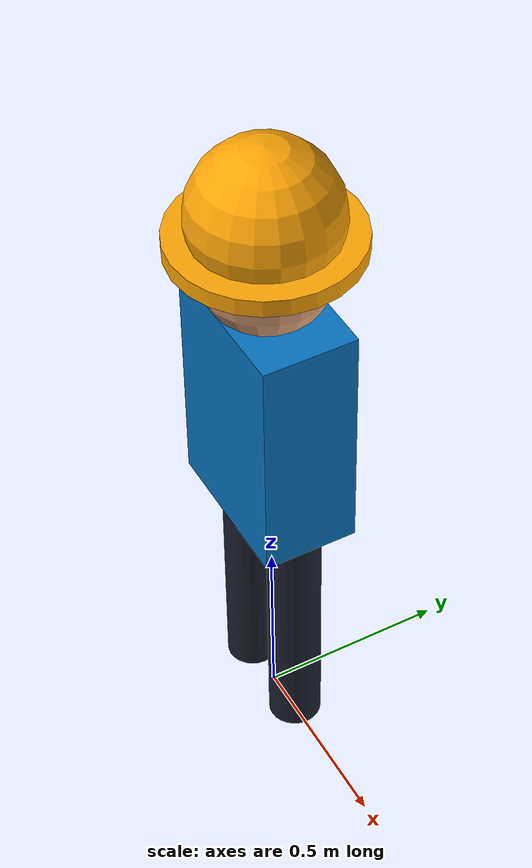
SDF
<?xml version="1.0"?>
<sdf version="1.6">
  <model name="worker_with_helmet">
    <static>true</static>
    <link name="worker">
      <!-- Blue body + yellow hard hat: normal worker. -->
      <visual name="torso">
        <pose>0 0 1.05 0 0 0</pose>
        <geometry><box><size>0.42 0.25 0.65</size></box></geometry>
        <material><ambient>0.03 0.45 0.75 1</ambient><diffuse>0.03 0.45 0.75 1</diffuse></material>
      </visual>
      <visual name="head">
        <pose>0 0 1.5 0 0 0</pose>
        <geometry><sphere><radius>0.17</radius></sphere></geometry>
        <material><ambient>0.86 0.62 0.46 1</ambient><diffuse>0.86 0.62 0.46 1</diffuse></material>
      </visual>
      <visual name="helmet_crown">
        <pose>0 0 1.64 0 0 0</pose>
        <geometry><sphere><radius>0.19</radius></sphere></geometry>
        <material><ambient>1 0.65 0.02 1</ambient><diffuse>1 0.65 0.02 1</diffuse></material>
      </visual>
      <visual name="helmet_brim">
        <pose>0 0 1.57 0 0 0</pose>
        <geometry><cylinder><radius>0.24</radius><length>0.045</length></cylinder></geometry>
        <material><ambient>1 0.65 0.02 1</ambient><diffuse>1 0.65 0.02 1</diffuse></material>
      </visual>
      <visual name="left_leg">
        <pose>-0.12 0 0.42 0 0 0</pose>
        <geometry><cylinder><radius>0.07</radius><length>0.8</length></cylinder></geometry>
        <material><ambient>0.1 0.12 0.18 1</ambient><diffuse>0.1 0.12 0.18 1</diffuse></material>
      </visual>
      <visual name="right_leg">
        <pose>0.12 0 0.42 0 0 0</pose>
        <geometry><cylinder><radius>0.07</radius><length>0.8</length></cylinder></geometry>
        <material><ambient>0.1 0.12 0.18 1</ambient><diffuse>0.1 0.12 0.18 1</diffuse></material>
      </visual>
    </link>
  </model>
</sdf>
